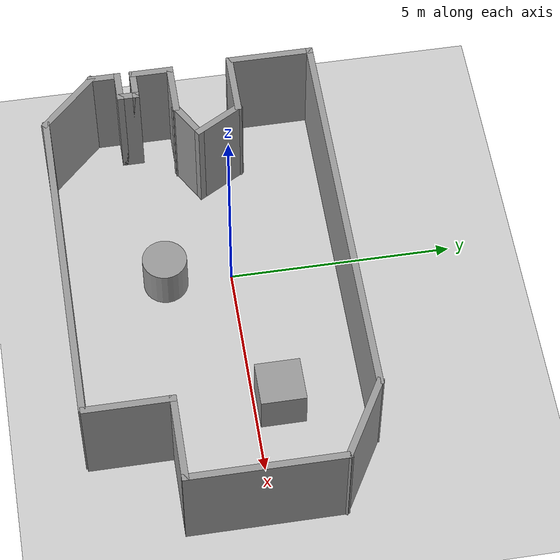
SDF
<sdf version="1.6">
 <world name="default">
  <light name="sun" type="directional">
   <pose>0 0 10 0 -0 0</pose>
   <diffuse>0.8 0.8 0.8 1</diffuse>
   <specular>0.2 0.2 0.2 1</specular>
   <attenuation>
    <range>1000</range>
    <constant>0.9</constant>
    <linear>0.01</linear>
    <quadratic>0.001</quadratic>
   </attenuation>
   <direction>-0.5 0.1 -0.9</direction>
  </light>
  <model name="ground_plane">
   <static>1</static>
   <link name="link">
    <collision name="collision">
     <geometry><plane><normal>0 0 1</normal><size>100 100</size></plane></geometry>
     <surface><friction><ode><mu>100</mu><mu2>50</mu2></ode></friction></surface>
    </collision>
    <visual name="visual">
     <cast_shadows>0</cast_shadows>
     <geometry><plane><normal>0 0 1</normal><size>100 100</size></plane></geometry>
     <material>
      <script><uri>file://media/materials/scripts/gazebo.material</uri><name>Gazebo/Grey</name></script>
     </material>
    </visual>
   </link>
  </model>
  <gravity>0 0 -9.8</gravity>
  <magnetic_field>6e-06 2.3e-05 -4.2e-05</magnetic_field>
  <atmosphere type="adiabatic"/>
  <physics name="default_physics" default="0" type="ode">
   <max_step_size>0.001</max_step_size>
   <real_time_factor>1</real_time_factor>
   <real_time_update_rate>1000</real_time_update_rate>
  </physics>
  <scene><ambient>0.4 0.4 0.4 1</ambient><background>0.7 0.7 0.7 1</background><shadows>1</shadows></scene>
  <spherical_coordinates>
   <surface_model>EARTH_WGS84</surface_model>
   <latitude_deg>0</latitude_deg>
   <longitude_deg>0</longitude_deg>
   <elevation>0</elevation>
   <heading_deg>0</heading_deg>
  </spherical_coordinates>
  <model name="mapa2_calibracion">
   <pose>1.01743 -0.628755 0 0 -0 0</pose>
   <link name="Wall_0">
    <collision name="Wall_0_Collision">
     <geometry><box><size>2 0.15 2.5</size></box></geometry>
     <pose>0 0 1.25 0 -0 0</pose>
    </collision>
    <visual name="Wall_0_Visual">
     <pose>0 0 1.25 0 -0 0</pose>
     <geometry><box><size>2 0.15 2.5</size></box></geometry>
     <material>
      <script><uri>file://media/materials/scripts/gazebo.material</uri><name>Gazebo/Grey</name></script>
      <ambient>1 1 1 1</ambient>
     </material>
     <meta><layer>0</layer></meta>
    </visual>
    <pose>3.36235 -2.11869 0 0 -0 1.5708</pose>
   </link>
   <link name="Wall_1">
    <collision name="Wall_1_Collision">
     <geometry><box><size>2 0.15 2.5</size></box></geometry>
     <pose>0 0 1.25 0 -0 0</pose>
    </collision>
    <visual name="Wall_1_Visual">
     <pose>0 0 1.25 0 -0 0</pose>
     <geometry><box><size>2 0.15 2.5</size></box></geometry>
     <material>
      <script><uri>file://media/materials/scripts/gazebo.material</uri><name>Gazebo/Grey</name></script>
      <ambient>1 1 1 1</ambient>
     </material>
     <meta><layer>0</layer></meta>
    </visual>
    <pose>4.28735 -1.19369 0 0 -0 0</pose>
   </link>
   <link name="Wall_10">
    <collision name="Wall_10_Collision">
     <geometry><box><size>1 0.15 2.5</size></box></geometry>
     <pose>0 0 1.25 0 -0 0</pose>
    </collision>
    <visual name="Wall_10_Visual">
     <pose>0 0 1.25 0 -0 0</pose>
     <geometry><box><size>1 0.15 2.5</size></box></geometry>
     <material>
      <script><uri>file://media/materials/scripts/gazebo.material</uri><name>Gazebo/Grey</name></script>
      <ambient>1 1 1 1</ambient>
     </material>
     <meta><layer>0</layer></meta>
    </visual>
    <pose>-5.17592 -0.571322 0 0 0 -1.5708</pose>
   </link>
   <link name="Wall_11">
    <collision name="Wall_11_Collision">
     <geometry><box><size>0.75 0.15 2.5</size></box></geometry>
     <pose>0 0 1.25 0 -0 0</pose>
    </collision>
    <visual name="Wall_11_Visual">
     <pose>0 0 1.25 0 -0 0</pose>
     <geometry><box><size>0.75 0.15 2.5</size></box></geometry>
     <material>
      <script><uri>file://media/materials/scripts/gazebo.material</uri><name>Gazebo/Grey</name></script>
      <ambient>1 1 1 1</ambient>
     </material>
     <meta><layer>0</layer></meta>
    </visual>
    <pose>-4.87592 -0.996321 0 0 -0 0</pose>
   </link>
   <link name="Wall_12">
    <collision name="Wall_12_Collision">
     <geometry><box><size>0.5 0.15 2.5</size></box></geometry>
     <pose>0 0 1.25 0 -0 0</pose>
    </collision>
    <visual name="Wall_12_Visual">
     <pose>0 0 1.25 0 -0 0</pose>
     <geometry><box><size>0.5 0.15 2.5</size></box></geometry>
     <material>
      <script><uri>file://media/materials/scripts/gazebo.material</uri><name>Gazebo/Grey</name></script>
      <ambient>1 1 1 1</ambient>
     </material>
     <meta><layer>0</layer></meta>
    </visual>
    <pose>-4.57592 -1.17132 0 0 0 -1.5708</pose>
   </link>
   <link name="Wall_13">
    <collision name="Wall_13_Collision">
     <geometry><box><size>0.75 0.15 2.5</size></box></geometry>
     <pose>0 0 1.25 0 -0 0</pose>
    </collision>
    <visual name="Wall_13_Visual">
     <pose>0 0 1.25 0 -0 0</pose>
     <geometry><box><size>0.75 0.15 2.5</size></box></geometry>
     <material>
      <script><uri>file://media/materials/scripts/gazebo.material</uri><name>Gazebo/Grey</name></script>
      <ambient>1 1 1 1</ambient>
     </material>
     <meta><layer>0</layer></meta>
    </visual>
    <pose>-4.87592 -1.34632 0 0 -0 3.14159</pose>
   </link>
   <link name="Wall_14">
    <collision name="Wall_14_Collision">
     <geometry><box><size>0.75 0.15 2.5</size></box></geometry>
     <pose>0 0 1.25 0 -0 0</pose>
    </collision>
    <visual name="Wall_14_Visual">
     <pose>0 0 1.25 0 -0 0</pose>
     <geometry><box><size>0.75 0.15 2.5</size></box></geometry>
     <material>
      <script><uri>file://media/materials/scripts/gazebo.material</uri><name>Gazebo/Grey</name></script>
      <ambient>1 1 1 1</ambient>
     </material>
     <meta><layer>0</layer></meta>
    </visual>
    <pose>-5.17592 -1.64632 0 0 0 -1.5708</pose>
   </link>
   <link name="Wall_15">
    <collision name="Wall_15_Collision">
     <geometry><box><size>1.75 0.15 2.5</size></box></geometry>
     <pose>0 0 1.25 0 -0 0</pose>
    </collision>
    <visual name="Wall_15_Visual">
     <pose>0 0 1.25 0 -0 0</pose>
     <geometry><box><size>1.75 0.15 2.5</size></box></geometry>
     <material>
      <script><uri>file://media/materials/scripts/gazebo.material</uri><name>Gazebo/Grey</name></script>
      <ambient>1 1 1 1</ambient>
     </material>
     <meta><layer>0</layer></meta>
    </visual>
    <pose>-4.61024 -2.51201 0 0 0 -0.785398</pose>
   </link>
   <link name="Wall_16">
    <collision name="Wall_16_Collision">
     <geometry><box><size>7.5 0.15 2.5</size></box></geometry>
     <pose>0 0 1.25 0 -0 0</pose>
    </collision>
    <visual name="Wall_16_Visual">
     <pose>0 0 1.25 0 -0 0</pose>
     <geometry><box><size>7.5 0.15 2.5</size></box></geometry>
     <material>
      <script><uri>file://media/materials/scripts/gazebo.material</uri><name>Gazebo/Grey</name></script>
      <ambient>1 1 1 1</ambient>
     </material>
     <meta><layer>0</layer></meta>
    </visual>
    <pose>-0.36955 -3.07769 0 0 -0 0</pose>
   </link>
   <link name="Wall_2">
    <collision name="Wall_2_Collision">
     <geometry><box><size>3.5 0.15 2.5</size></box></geometry>
     <pose>0 0 1.25 0 -0 0</pose>
    </collision>
    <visual name="Wall_2_Visual">
     <pose>0 0 1.25 0 -0 0</pose>
     <geometry><box><size>3.5 0.15 2.5</size></box></geometry>
     <material>
      <script><uri>file://media/materials/scripts/gazebo.material</uri><name>Gazebo/Grey</name></script>
      <ambient>1 1 1 1</ambient>
     </material>
     <meta><layer>0</layer></meta>
    </visual>
    <pose>5.21235 0.481306 0 0 -0 1.5708</pose>
   </link>
   <link name="Wall_3">
    <collision name="Wall_3_Collision">
     <geometry><box><size>2 0.15 2.5</size></box></geometry>
     <pose>0 0 1.25 0 -0 0</pose>
    </collision>
    <visual name="Wall_3_Visual">
     <pose>0 0 1.25 0 -0 0</pose>
     <geometry><box><size>2 0.15 2.5</size></box></geometry>
     <material>
      <script><uri>file://media/materials/scripts/gazebo.material</uri><name>Gazebo/Grey</name></script>
      <ambient>1 1 1 1</ambient>
     </material>
     <meta><layer>0</layer></meta>
    </visual>
    <pose>4.41127 2.61881 0 0 -0 2.61799</pose>
   </link>
   <link name="Wall_4">
    <collision name="Wall_4_Collision">
     <geometry><box><size>9 0.15 2.5</size></box></geometry>
     <pose>0 0 1.25 0 -0 0</pose>
    </collision>
    <visual name="Wall_4_Visual">
     <pose>0 0 1.25 0 -0 0</pose>
     <geometry><box><size>9 0.15 2.5</size></box></geometry>
     <material>
      <script><uri>file://media/materials/scripts/gazebo.material</uri><name>Gazebo/Grey</name></script>
      <ambient>1 1 1 1</ambient>
     </material>
     <meta><layer>0</layer></meta>
    </visual>
    <pose>-0.8148 3.08131 0 0 -0 3.14159</pose>
   </link>
   <link name="Wall_5">
    <collision name="Wall_5_Collision">
     <geometry><box><size>2 0.15 2.5</size></box></geometry>
     <pose>0 0 1.25 0 -0 0</pose>
    </collision>
    <visual name="Wall_5_Visual">
     <pose>0 0 1.25 0 -0 0</pose>
     <geometry><box><size>2 0.15 2.5</size></box></geometry>
     <material>
      <script><uri>file://media/materials/scripts/gazebo.material</uri><name>Gazebo/Grey</name></script>
      <ambient>1 1 1 1</ambient>
     </material>
     <meta><layer>0</layer></meta>
    </visual>
    <pose>-5.2398 2.15631 0 0 0 -1.5708</pose>
   </link>
   <link name="Wall_6">
    <collision name="Wall_6_Collision">
     <geometry><box><size>1.5 0.15 2.5</size></box></geometry>
     <pose>0 0 1.25 0 -0 0</pose>
    </collision>
    <visual name="Wall_6_Visual">
     <pose>0 0 1.25 0 -0 0</pose>
     <geometry><box><size>1.5 0.15 2.5</size></box></geometry>
     <material>
      <script><uri>file://media/materials/scripts/gazebo.material</uri><name>Gazebo/Grey</name></script>
      <ambient>1 1 1 1</ambient>
     </material>
     <meta><layer>0</layer></meta>
    </visual>
    <pose>-4.5648 1.23131 0 0 -0 0</pose>
   </link>
   <link name="Wall_7">
    <collision name="Wall_7_Collision">
     <geometry><box><size>1.25 0.15 2.5</size></box></geometry>
     <pose>0 0 1.25 0 -0 0</pose>
    </collision>
    <visual name="Wall_7_Visual">
     <pose>0 0 1.25 0 -0 0</pose>
     <geometry><box><size>1.25 0.15 2.5</size></box></geometry>
     <material>
      <script><uri>file://media/materials/scripts/gazebo.material</uri><name>Gazebo/Grey</name></script>
      <ambient>1 1 1 1</ambient>
     </material>
     <meta><layer>0</layer></meta>
    </visual>
    <pose>-3.6148 0.754992 0 0 0 -1.0472</pose>
   </link>
   <link name="Wall_8">
    <collision name="Wall_8_Collision">
     <geometry><box><size>1 0.15 2.5</size></box></geometry>
     <pose>0 0 1.25 0 -0 0</pose>
    </collision>
    <visual name="Wall_8_Visual">
     <pose>0 0 1.25 0 -0 0</pose>
     <geometry><box><size>1 0.15 2.5</size></box></geometry>
     <material>
      <script><uri>file://media/materials/scripts/gazebo.material</uri><name>Gazebo/Grey</name></script>
      <ambient>1 1 1 1</ambient>
     </material>
     <meta><layer>0</layer></meta>
    </visual>
    <pose>-3.70786 0.066179 0 0 0 -2.61799</pose>
   </link>
   <link name="Wall_9">
    <collision name="Wall_9_Collision">
     <geometry><box><size>1.25 0.15 2.5</size></box></geometry>
     <pose>0 0 1.25 0 -0 0</pose>
    </collision>
    <visual name="Wall_9_Visual">
     <pose>0 0 1.25 0 -0 0</pose>
     <geometry><box><size>1.25 0.15 2.5</size></box></geometry>
     <material>
      <script><uri>file://media/materials/scripts/gazebo.material</uri><name>Gazebo/Grey</name></script>
      <ambient>1 1 1 1</ambient>
     </material>
     <meta><layer>0</layer></meta>
    </visual>
    <pose>-4.62592 -0.146322 0 0 -0 3.14159</pose>
   </link>
   <static>1</static>
  </model>
  <model name="unit_box">
   <pose>3.44999 0.568978 0.499995 0 1e-05 0</pose>
   <link name="link">
    <inertial>
     <mass>1</mass>
     <inertia>
      <ixx>0.166667</ixx>
      <ixy>0</ixy>
      <ixz>0</ixz>
      <iyy>0.166667</iyy>
      <iyz>0</iyz>
      <izz>0.166667</izz>
     </inertia>
    </inertial>
    <collision name="collision"><geometry><box><size>1 1 1</size></box></geometry></collision>
    <visual name="visual">
     <geometry><box><size>1 1 1</size></box></geometry>
     <material>
      <script><name>Gazebo/Grey</name><uri>file://media/materials/scripts/gazebo.material</uri></script>
     </material>
    </visual>
   </link>
  </model>
  <model name="unit_cylinder">
   <pose>-0.038761 -1.48618 0.499993 -3e-06 -3e-06 0</pose>
   <link name="link">
    <inertial>
     <mass>1</mass>
     <inertia><ixx>0.145833</ixx><ixy>0</ixy><ixz>0</ixz><iyy>0.145833</iyy><iyz>0</iyz><izz>0.125</izz></inertia>
    </inertial>
    <collision name="collision">
     <geometry><cylinder><radius>0.5</radius><length>1</length></cylinder></geometry>
    </collision>
    <visual name="visual">
     <geometry><cylinder><radius>0.5</radius><length>1</length></cylinder></geometry>
     <material>
      <script><name>Gazebo/Grey</name><uri>file://media/materials/scripts/gazebo.material</uri></script>
     </material>
    </visual>
   </link>
  </model>
 </world>
</sdf>
